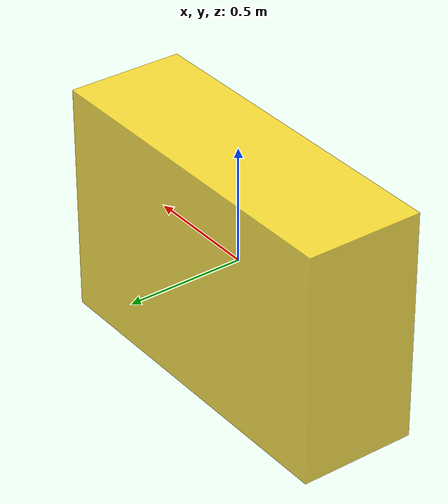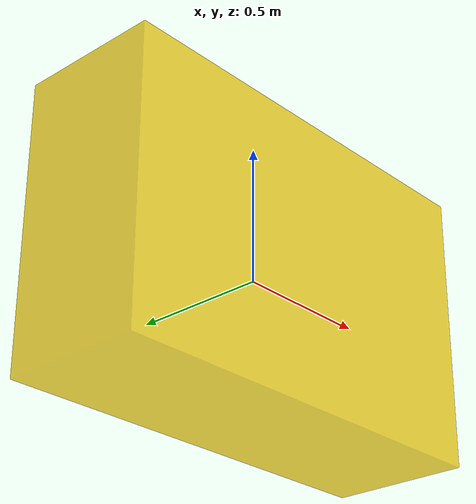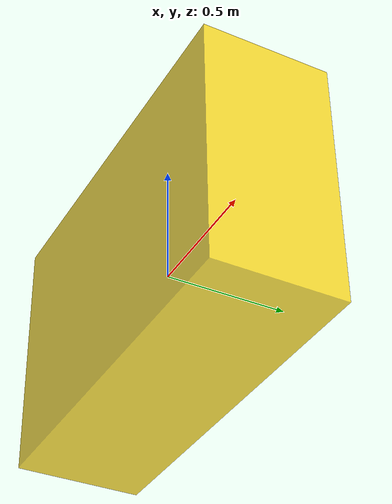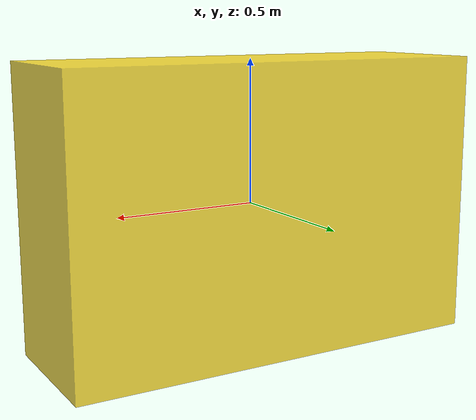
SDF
<?xml version='1.0'?>

<sdf version='1.6'>
  <model name='manipuland'>
    <link name='body_pre_x'/>
    <link name='body_pre_y'/>
    <link name='body_pre_theta'/>

    <joint name='body_x' type='prismatic'>
      <child>body_pre_y</child>
      <parent>body_pre_x</parent>
      <axis>
        <xyz>1 0 0</xyz>
        <limit>
          <effort>0.0</effort>
        </limit>
        <dynamics>
          <damping>0</damping>
          <friction>0.3</friction>
          <spring_reference>0</spring_reference>
          <spring_stiffness>0</spring_stiffness>
        </dynamics>
        <use_parent_model_frame>1</use_parent_model_frame>
      </axis>
    </joint>
    <joint name='body_y' type='prismatic'>
      <child>body_pre_theta</child>
      <parent>body_pre_y</parent>
      <axis>
        <xyz>0 1 0</xyz>
        <limit>
          <effort>0.0</effort>
        </limit>
        <dynamics>
          <damping>0</damping>
          <friction>0.3</friction>
          <spring_reference>0</spring_reference>
          <spring_stiffness>0</spring_stiffness>
        </dynamics>
        <use_parent_model_frame>1</use_parent_model_frame>
      </axis>
    </joint>
    <joint name='body_theta' type='revolute'>
      <child>manipuland_body</child>
      <parent>body_pre_theta</parent>
      <axis>
        <xyz>0 0 1</xyz>
        <limit>
          <effort>0.0</effort>
        </limit>
        <dynamics>
          <damping>0</damping>
          <friction>0.3</friction>
          <spring_reference>0</spring_reference>
          <spring_stiffness>0</spring_stiffness>
        </dynamics>
        <use_parent_model_frame>1</use_parent_model_frame>
      </axis>
    </joint>

    <link name='manipuland_body'>
      <pose>0.0 0 0 0 0 0</pose>
      <inertial>
        <pose>0.0 0 0 0 0 0</pose>
        <mass>1.0</mass>
        <inertia>
          <ixx>0.1</ixx>
          <ixy>0</ixy>
          <ixz>0</ixz>
          <iyy>0.1</iyy>
          <iyz>0</iyz>
          <izz>0.1</izz>
        </inertia>
      </inertial>
      <visual name='manipuland_visual'>
        <pose>0.0 0 0 0 0 0</pose>
        <geometry>
          <box>
            <size>1.5 0.5 1.0</size>
          </box>
        </geometry>
        <material>
          <diffuse>1.0 0.843 0.0 0.75</diffuse>
        </material>
      </visual>
      <collision name='manipuland_collision'>
        <pose>0.0 0 0 0 0 0</pose>
        <geometry>
          <box>
            <size>1.5 0.5 1.0</size>
          </box>
        </geometry>
      </collision>
    </link>

  </model>
</sdf>
